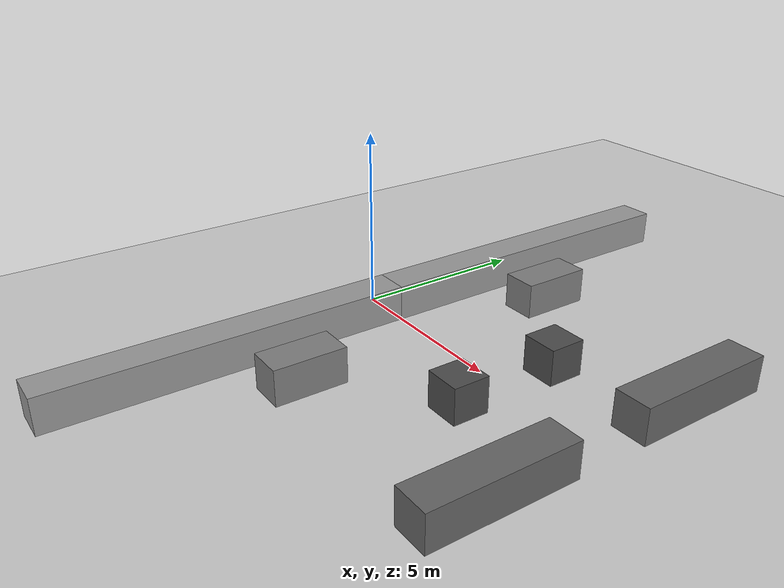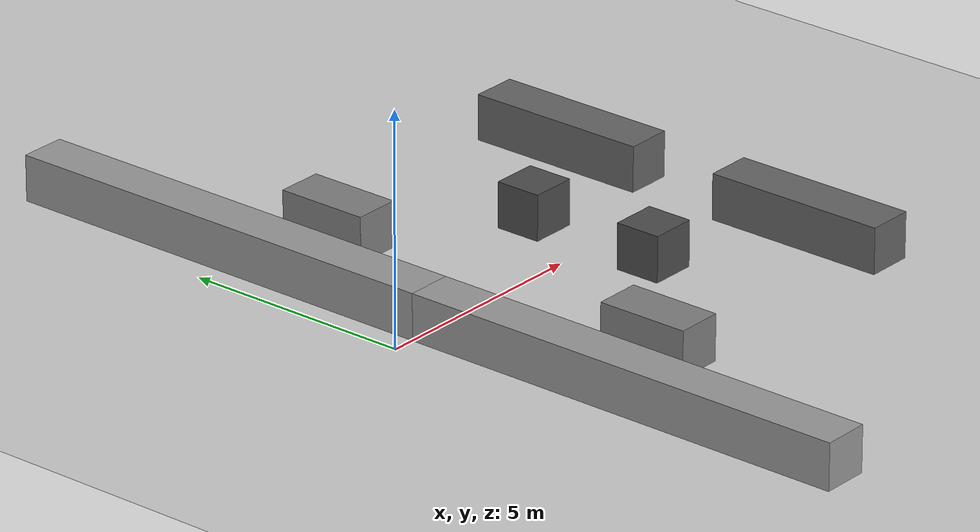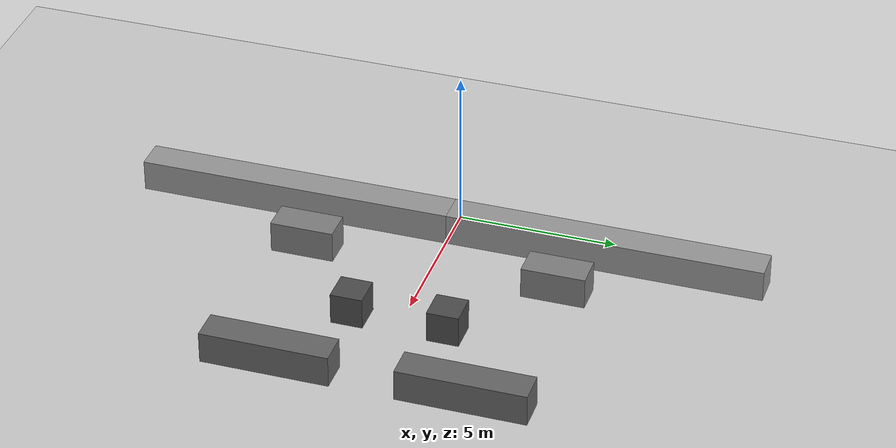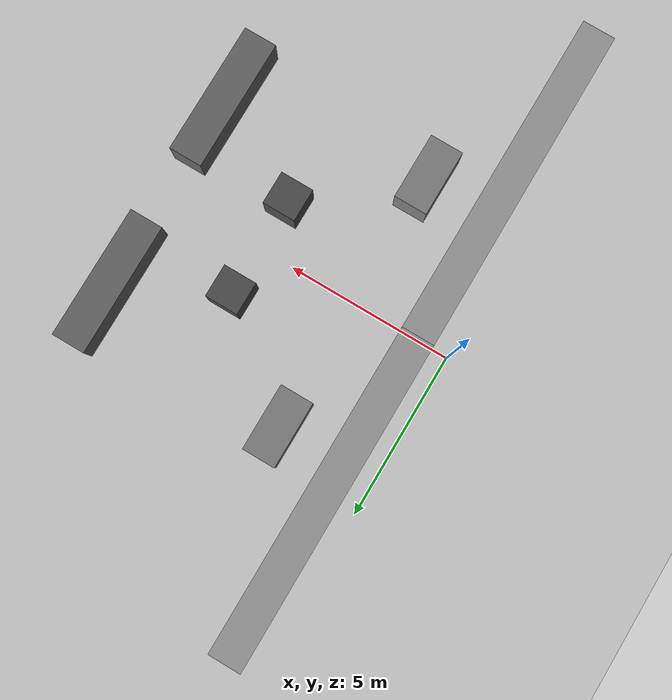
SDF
<?xml version="1.0" ?>
<sdf version="1.7">
  <world name="scenario_6_constrained_only">
    <!-- Sunlight -->
    <include>
      <uri>model://sun</uri>
    </include>

    <!-- Flat ground -->
    <include>
      <uri>model://ground_plane</uri>
    </include>

    <!-- Constrained passage - Wide to narrow corridor -->
    <!-- Wide entrance section -->
    <model name="entrance_left">
      <static>true</static>
      <pose>1.0 -5.0 0.5 0 0 0</pose>
      <link name="link">
        <collision name="collision">
          <geometry>
            <box>
              <size>1.0 10.0 1.0</size>
            </box>
          </geometry>
        </collision>
        <visual name="visual">
          <geometry>
            <box>
              <size>1.0 10.0 1.0</size>
            </box>
          </geometry>
          <material>
            <ambient>0.6 0.6 0.6 1</ambient>
            <diffuse>0.6 0.6 0.6 1</diffuse>
          </material>
        </visual>
      </link>
    </model>

    <model name="entrance_right">
      <static>true</static>
      <pose>1.0 5.0 0.5 0 0 0</pose>
      <link name="link">
        <collision name="collision">
          <geometry>
            <box>
              <size>1.0 10.0 1.0</size>
            </box>
          </geometry>
        </collision>
        <visual name="visual">
          <geometry>
            <box>
              <size>1.0 10.0 1.0</size>
            </box>
          </geometry>
          <material>
            <ambient>0.6 0.6 0.6 1</ambient>
            <diffuse>0.6 0.6 0.6 1</diffuse>
          </material>
        </visual>
      </link>
    </model>

    <!-- Transition section - gradually narrowing -->
    <model name="transition_left_1">
      <static>true</static>
      <pose>3.0 -4.0 0.5 0 0 0</pose>
      <link name="link">
        <collision name="collision">
          <geometry>
            <box>
              <size>1.0 2.0 1.0</size>
            </box>
          </geometry>
        </collision>
        <visual name="visual">
          <geometry>
            <box>
              <size>1.0 2.0 1.0</size>
            </box>
          </geometry>
          <material>
            <ambient>0.5 0.5 0.5 1</ambient>
            <diffuse>0.5 0.5 0.5 1</diffuse>
          </material>
        </visual>
      </link>
    </model>

    <model name="transition_right_1">
      <static>true</static>
      <pose>3.0 4.0 0.5 0 0 0</pose>
      <link name="link">
        <collision name="collision">
          <geometry>
            <box>
              <size>1.0 2.0 1.0</size>
            </box>
          </geometry>
        </collision>
        <visual name="visual">
          <geometry>
            <box>
              <size>1.0 2.0 1.0</size>
            </box>
          </geometry>
          <material>
            <ambient>0.5 0.5 0.5 1</ambient>
            <diffuse>0.5 0.5 0.5 1</diffuse>
          </material>
        </visual>
      </link>
    </model>

    <!-- Narrow section -->
    <model name="narrow_left">
      <static>true</static>
      <pose>6.0 -1.5 0.5 0 0 0</pose>
      <link name="link">
        <collision name="collision">
          <geometry>
            <box>
              <size>1.0 1.0 1.0</size>
            </box>
          </geometry>
        </collision>
        <visual name="visual">
          <geometry>
            <box>
              <size>1.0 1.0 1.0</size>
            </box>
          </geometry>
          <material>
            <ambient>0.3 0.3 0.3 1</ambient>
            <diffuse>0.3 0.3 0.3 1</diffuse>
          </material>
        </visual>
      </link>
    </model>

    <model name="narrow_right">
      <static>true</static>
      <pose>6.0 1.5 0.5 0 0 0</pose>
      <link name="link">
        <collision name="collision">
          <geometry>
            <box>
              <size>1.0 1.0 1.0</size>
            </box>
          </geometry>
        </collision>
        <visual name="visual">
          <geometry>
            <box>
              <size>1.0 1.0 1.0</size>
            </box>
          </geometry>
          <material>
            <ambient>0.3 0.3 0.3 1</ambient>
            <diffuse>0.3 0.3 0.3 1</diffuse>
          </material>
        </visual>
      </link>
    </model>

    <!-- Exit section - widening again -->
    <model name="exit_left">
      <static>true</static>
      <pose>9.0 -3.0 0.5 0 0 0</pose>
      <link name="link">
        <collision name="collision">
          <geometry>
            <box>
              <size>1.0 4.0 1.0</size>
            </box>
          </geometry>
        </collision>
        <visual name="visual">
          <geometry>
            <box>
              <size>1.0 4.0 1.0</size>
            </box>
          </geometry>
          <material>
            <ambient>0.4 0.4 0.4 1</ambient>
            <diffuse>0.4 0.4 0.4 1</diffuse>
          </material>
        </visual>
      </link>
    </model>

    <model name="exit_right">
      <static>true</static>
      <pose>9.0 3.0 0.5 0 0 0</pose>
      <link name="link">
        <collision name="collision">
          <geometry>
            <box>
              <size>1.0 4.0 1.0</size>
            </box>
          </geometry>
        </collision>
        <visual name="visual">
          <geometry>
            <box>
              <size>1.0 4.0 1.0</size>
            </box>
          </geometry>
          <material>
            <ambient>0.4 0.4 0.4 1</ambient>
            <diffuse>0.4 0.4 0.4 1</diffuse>
          </material>
        </visual>
      </link>
    </model>

  </world>
</sdf>
